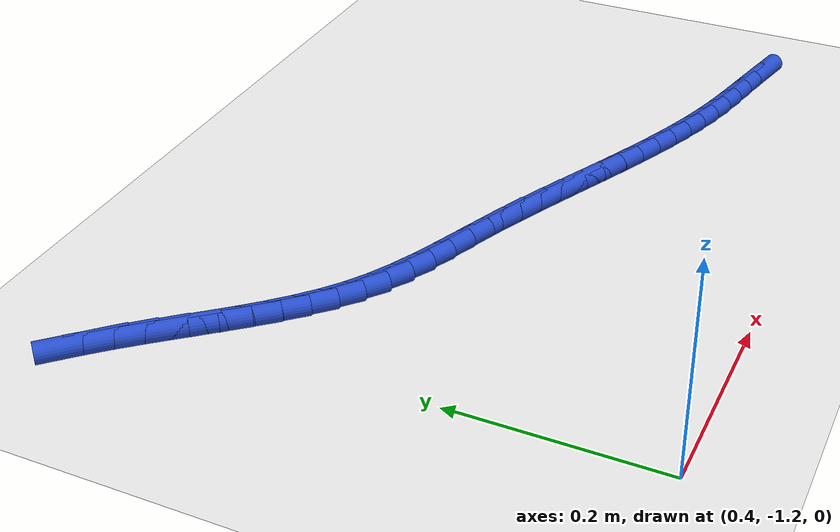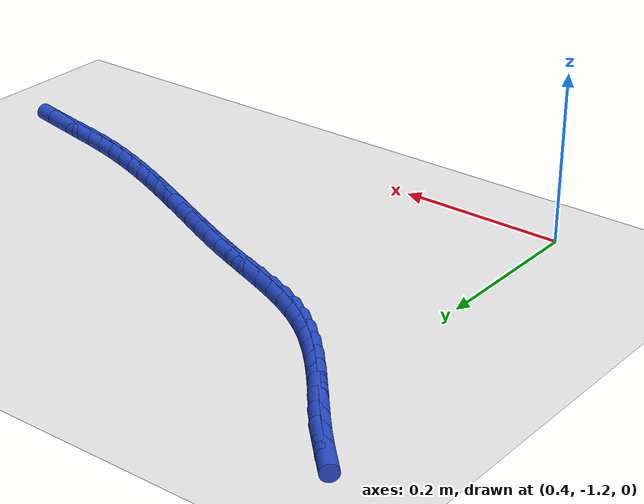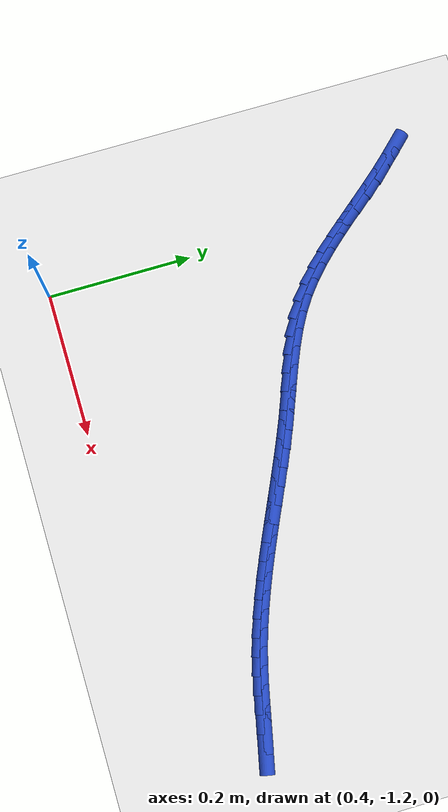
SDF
<sdf version="1.6">
 <world name="default">
  <model name="ground_plane">
   <static>1</static>
   <link name="link">
    <collision name="collision">
     <geometry><plane><normal>0 0 1</normal><size>100 100</size></plane></geometry>
     <surface><friction><ode><mu>100</mu><mu2>50</mu2></ode></friction></surface>
    </collision>
    <visual name="visual">
     <cast_shadows>0</cast_shadows>
     <geometry><plane><normal>0 0 1</normal><size>100 100</size></plane></geometry>
     <material>
      <script><uri>file://media/materials/scripts/gazebo.material</uri><name>Gazebo/WhiteGlow</name></script>
     </material>
    </visual>
   </link>
  </model>
  <model name="line">
   <link name="link_205">
    <pose>1.05690249130449 -1.0856761563710677 0.01 0 1.57 -0.21712295929126268</pose>
    <collision name="collision">
     <geometry><cylinder><radius>0.01</radius><length>0.08</length></cylinder></geometry>
    </collision>
    <visual name="visual">
     <material>
      <script><name>Gazebo/Blue</name><uri>file://media/materials/scripts/gazebo.material</uri></script>
     </material>
     <geometry><cylinder><radius>0.01</radius><length>0.08</length></cylinder></geometry>
    </visual>
   </link>
   <link name="link_206">
    <pose>1.0312082361942605 -1.0800079922213617 0.01 0 1.57 -0.21273833676994625</pose>
    <collision name="collision">
     <geometry><cylinder><radius>0.01</radius><length>0.08</length></cylinder></geometry>
    </collision>
    <visual name="visual">
     <material>
      <script><name>Gazebo/Blue</name><uri>file://media/materials/scripts/gazebo.material</uri></script>
     </material>
     <geometry><cylinder><radius>0.01</radius><length>0.08</length></cylinder></geometry>
    </visual>
   </link>
   <link name="link_207">
    <pose>1.0063256407469034 -1.0746331808611478 0.01 0 1.57 -0.22045401307047727</pose>
    <collision name="collision">
     <geometry><cylinder><radius>0.01</radius><length>0.08</length></cylinder></geometry>
    </collision>
    <visual name="visual">
     <material>
      <script><name>Gazebo/Blue</name><uri>file://media/materials/scripts/gazebo.material</uri></script>
     </material>
     <geometry><cylinder><radius>0.01</radius><length>0.08</length></cylinder></geometry>
    </visual>
   </link>
   <link name="link_208">
    <pose>0.982076095365031 -1.06919895022295 0.01 0 1.57 -0.24092612885756362</pose>
    <collision name="collision">
     <geometry><cylinder><radius>0.01</radius><length>0.08</length></cylinder></geometry>
    </collision>
    <visual name="visual">
     <material>
      <script><name>Gazebo/Blue</name><uri>file://media/materials/scripts/gazebo.material</uri></script>
     </material>
     <geometry><cylinder><radius>0.01</radius><length>0.08</length></cylinder></geometry>
    </visual>
   </link>
   <link name="link_209">
    <pose>0.9582809904512527 -1.0633525282392935 0.01 0 1.57 -0.2738408756062567</pose>
    <collision name="collision">
     <geometry><cylinder><radius>0.01</radius><length>0.08</length></cylinder></geometry>
    </collision>
    <visual name="visual">
     <material>
      <script><name>Gazebo/Blue</name><uri>file://media/materials/scripts/gazebo.material</uri></script>
     </material>
     <geometry><cylinder><radius>0.01</radius><length>0.08</length></cylinder></geometry>
    </visual>
   </link>
   <link name="link_210">
    <pose>0.9347634065448159 -1.056746494792906 0.01 0 1.57 -0.3113506947549193</pose>
    <collision name="collision">
     <geometry><cylinder><radius>0.01</radius><length>0.08</length></cylinder></geometry>
    </collision>
    <visual name="visual">
     <material>
      <script><name>Gazebo/Blue</name><uri>file://media/materials/scripts/gazebo.material</uri></script>
     </material>
     <geometry><cylinder><radius>0.01</radius><length>0.08</length></cylinder></geometry>
    </visual>
   </link>
   <link name="link_211">
    <pose>0.9114086690332983 -1.049230532960243 0.01 0 1.57 -0.344196979592678</pose>
    <collision name="collision">
     <geometry><cylinder><radius>0.01</radius><length>0.08</length></cylinder></geometry>
    </collision>
    <visual name="visual">
     <material>
      <script><name>Gazebo/Blue</name><uri>file://media/materials/scripts/gazebo.material</uri></script>
     </material>
     <geometry><cylinder><radius>0.01</radius><length>0.08</length></cylinder></geometry>
    </visual>
   </link>
   <link name="link_212">
    <pose>0.888181015401971 -1.0409042071636896 0.01 0 1.57 -0.37185021031246207</pose>
    <collision name="collision">
     <geometry><cylinder><radius>0.01</radius><length>0.08</length></cylinder></geometry>
    </collision>
    <visual name="visual">
     <material>
      <script><name>Gazebo/Blue</name><uri>file://media/materials/scripts/gazebo.material</uri></script>
     </material>
     <geometry><cylinder><radius>0.01</radius><length>0.08</length></cylinder></geometry>
    </visual>
   </link>
   <link name="link_213">
    <pose>0.8650497656557491 -1.0318831760226868 0.01 0 1.57 -0.3944010332750909</pose>
    <collision name="collision">
     <geometry><cylinder><radius>0.01</radius><length>0.08</length></cylinder></geometry>
    </collision>
    <visual name="visual">
     <material>
      <script><name>Gazebo/Blue</name><uri>file://media/materials/scripts/gazebo.material</uri></script>
     </material>
     <geometry><cylinder><radius>0.01</radius><length>0.08</length></cylinder></geometry>
    </visual>
   </link>
   <link name="link_214">
    <pose>0.8419842397995521 -1.022283098156676 0.01 0 1.57 -0.41195953306890654</pose>
    <collision name="collision">
     <geometry><cylinder><radius>0.01</radius><length>0.08</length></cylinder></geometry>
    </collision>
    <visual name="visual">
     <material>
      <script><name>Gazebo/Blue</name><uri>file://media/materials/scripts/gazebo.material</uri></script>
     </material>
     <geometry><cylinder><radius>0.01</radius><length>0.08</length></cylinder></geometry>
    </visual>
   </link>
   <link name="link_215">
    <pose>0.8189537578382963 -1.012219632185098 0.01 0 1.57 -0.4246381273253977</pose>
    <collision name="collision">
     <geometry><cylinder><radius>0.01</radius><length>0.08</length></cylinder></geometry>
    </collision>
    <visual name="visual">
     <material>
      <script><name>Gazebo/Blue</name><uri>file://media/materials/scripts/gazebo.material</uri></script>
     </material>
     <geometry><cylinder><radius>0.01</radius><length>0.08</length></cylinder></geometry>
    </visual>
   </link>
   <link name="link_216">
    <pose>0.7959276397768986 -1.001808436727394 0.01 0 1.57 -0.43253941751792385</pose>
    <collision name="collision">
     <geometry><cylinder><radius>0.01</radius><length>0.08</length></cylinder></geometry>
    </collision>
    <visual name="visual">
     <material>
      <script><name>Gazebo/Blue</name><uri>file://media/materials/scripts/gazebo.material</uri></script>
     </material>
     <geometry><cylinder><radius>0.01</radius><length>0.08</length></cylinder></geometry>
    </visual>
   </link>
   <link name="link_217">
    <pose>0.7728752056202779 -0.9911651704030056 0.01 0 1.57 -0.43574832352965026</pose>
    <collision name="collision">
     <geometry><cylinder><radius>0.01</radius><length>0.08</length></cylinder></geometry>
    </collision>
    <visual name="visual">
     <material>
      <script><name>Gazebo/Blue</name><uri>file://media/materials/scripts/gazebo.material</uri></script>
     </material>
     <geometry><cylinder><radius>0.01</radius><length>0.08</length></cylinder></geometry>
    </visual>
   </link>
   <link name="link_218">
    <pose>0.7497657753733502 -0.9804054918313733 0.01 0 1.57 -0.434327829600961</pose>
    <collision name="collision">
     <geometry><cylinder><radius>0.01</radius><length>0.08</length></cylinder></geometry>
    </collision>
    <visual name="visual">
     <material>
      <script><name>Gazebo/Blue</name><uri>file://media/materials/scripts/gazebo.material</uri></script>
     </material>
     <geometry><cylinder><radius>0.01</radius><length>0.08</length></cylinder></geometry>
    </visual>
   </link>
   <link name="link_219">
    <pose>0.7265686690410338 -0.9696450596319387 0.01 0 1.57 -0.4283178081827673</pose>
    <collision name="collision">
     <geometry><cylinder><radius>0.01</radius><length>0.08</length></cylinder></geometry>
    </collision>
    <visual name="visual">
     <material>
      <script><name>Gazebo/Blue</name><uri>file://media/materials/scripts/gazebo.material</uri></script>
     </material>
     <geometry><cylinder><radius>0.01</radius><length>0.08</length></cylinder></geometry>
    </visual>
   </link>
   <link name="link_220">
    <pose>0.7032532066282451 -0.9589995324241425 0.01 0 1.57 -0.41773658473296754</pose>
    <collision name="collision">
     <geometry><cylinder><radius>0.01</radius><length>0.08</length></cylinder></geometry>
    </collision>
    <visual name="visual">
     <material>
      <script><name>Gazebo/Blue</name><uri>file://media/materials/scripts/gazebo.material</uri></script>
     </material>
     <geometry><cylinder><radius>0.01</radius><length>0.08</length></cylinder></geometry>
    </visual>
   </link>
   <link name="link_221">
    <pose>0.6797887081399027 -0.9485845688274261 0.01 0 1.57 -0.4025851075011302</pose>
    <collision name="collision">
     <geometry><cylinder><radius>0.01</radius><length>0.08</length></cylinder></geometry>
    </collision>
    <visual name="visual">
     <material>
      <script><name>Gazebo/Blue</name><uri>file://media/materials/scripts/gazebo.material</uri></script>
     </material>
     <geometry><cylinder><radius>0.01</radius><length>0.08</length></cylinder></geometry>
    </visual>
   </link>
   <link name="link_222">
    <pose>0.6561444935809223 -0.9385158274612304 0.01 0 1.57 -0.383779026471745</pose>
    <collision name="collision">
     <geometry><cylinder><radius>0.01</radius><length>0.08</length></cylinder></geometry>
    </collision>
    <visual name="visual">
     <material>
      <script><name>Gazebo/Blue</name><uri>file://media/materials/scripts/gazebo.material</uri></script>
     </material>
     <geometry><cylinder><radius>0.01</radius><length>0.08</length></cylinder></geometry>
    </visual>
   </link>
   <link name="link_223">
    <pose>0.6323017828776538 -0.9288881107681018 0.01 0 1.57 -0.37341642400331093</pose>
    <collision name="collision">
     <geometry><cylinder><radius>0.01</radius><length>0.08</length></cylinder></geometry>
    </collision>
    <visual name="visual">
     <material>
      <script><name>Gazebo/Blue</name><uri>file://media/materials/scripts/gazebo.material</uri></script>
     </material>
     <geometry><cylinder><radius>0.01</radius><length>0.08</length></cylinder></geometry>
    </visual>
   </link>
   <link name="link_224">
    <pose>0.6083979138044971 -0.9195226041356764 0.01 0 1.57 -0.3800530041214617</pose>
    <collision name="collision">
     <geometry><cylinder><radius>0.01</radius><length>0.08</length></cylinder></geometry>
    </collision>
    <visual name="visual">
     <material>
      <script><name>Gazebo/Blue</name><uri>file://media/materials/scripts/gazebo.material</uri></script>
     </material>
     <geometry><cylinder><radius>0.01</radius><length>0.08</length></cylinder></geometry>
    </visual>
   </link>
   <link name="link_225">
    <pose>0.58468008661844 -0.9100479445062667 0.01 0 1.57 -0.4042043663872573</pose>
    <collision name="collision">
     <geometry><cylinder><radius>0.01</radius><length>0.08</length></cylinder></geometry>
    </collision>
    <visual name="visual">
     <material>
      <script><name>Gazebo/Blue</name><uri>file://media/materials/scripts/gazebo.material</uri></script>
     </material>
     <geometry><cylinder><radius>0.01</radius><length>0.08</length></cylinder></geometry>
    </visual>
   </link>
   <link name="link_226">
    <pose>0.5613977908696737 -0.9000887565348481 0.01 0 1.57 -0.44652681998860244</pose>
    <collision name="collision">
     <geometry><cylinder><radius>0.01</radius><length>0.08</length></cylinder></geometry>
    </collision>
    <visual name="visual">
     <material>
      <script><name>Gazebo/Blue</name><uri>file://media/materials/scripts/gazebo.material</uri></script>
     </material>
     <geometry><cylinder><radius>0.01</radius><length>0.08</length></cylinder></geometry>
    </visual>
   </link>
   <link name="link_227">
    <pose>0.5388005161083905 -0.8892696648763954 0.01 0 1.57 -0.5077861603887521</pose>
    <collision name="collision">
     <geometry><cylinder><radius>0.01</radius><length>0.08</length></cylinder></geometry>
    </collision>
    <visual name="visual">
     <material>
      <script><name>Gazebo/Blue</name><uri>file://media/materials/scripts/gazebo.material</uri></script>
     </material>
     <geometry><cylinder><radius>0.01</radius><length>0.08</length></cylinder></geometry>
    </visual>
   </link>
   <link name="link_228">
    <pose>0.5171377518847837 -0.8772152941858846 0.01 0 1.57 -0.5880938714448425</pose>
    <collision name="collision">
     <geometry><cylinder><radius>0.01</radius><length>0.08</length></cylinder></geometry>
    </collision>
    <visual name="visual">
     <material>
      <script><name>Gazebo/Blue</name><uri>file://media/materials/scripts/gazebo.material</uri></script>
     </material>
     <geometry><cylinder><radius>0.01</radius><length>0.08</length></cylinder></geometry>
    </visual>
   </link>
   <link name="link_229">
    <pose>0.4966542120567542 -0.8635569004289964 0.01 0 1.57 -0.6734074346524154</pose>
    <collision name="collision">
     <geometry><cylinder><radius>0.01</radius><length>0.08</length></cylinder></geometry>
    </collision>
    <visual name="visual">
     <material>
      <script><name>Gazebo/Blue</name><uri>file://media/materials/scripts/gazebo.material</uri></script>
     </material>
     <geometry><cylinder><radius>0.01</radius><length>0.08</length></cylinder></geometry>
    </visual>
   </link>
   <link name="link_230">
    <pose>0.4774001705658258 -0.8481957300608793 0.01 0 1.57 -0.744683285462189</pose>
    <collision name="collision">
     <geometry><cylinder><radius>0.01</radius><length>0.08</length></cylinder></geometry>
    </collision>
    <visual name="visual">
     <material>
      <script><name>Gazebo/Blue</name><uri>file://media/materials/scripts/gazebo.material</uri></script>
     </material>
     <geometry><cylinder><radius>0.01</radius><length>0.08</length></cylinder></geometry>
    </visual>
   </link>
   <link name="link_231">
    <pose>0.45916811396023743 -0.8313909814726188 0.01 0 1.57 -0.8003439656162981</pose>
    <collision name="collision">
     <geometry><cylinder><radius>0.01</radius><length>0.08</length></cylinder></geometry>
    </collision>
    <visual name="visual">
     <material>
      <script><name>Gazebo/Blue</name><uri>file://media/materials/scripts/gazebo.material</uri></script>
     </material>
     <geometry><cylinder><radius>0.01</radius><length>0.08</length></cylinder></geometry>
    </visual>
   </link>
   <link name="link_232">
    <pose>0.44173276689485963 -0.8134265164185354 0.01 0 1.57 -0.8406967027699134</pose>
    <collision name="collision">
     <geometry><cylinder><radius>0.01</radius><length>0.08</length></cylinder></geometry>
    </collision>
    <visual name="visual">
     <material>
      <script><name>Gazebo/Blue</name><uri>file://media/materials/scripts/gazebo.material</uri></script>
     </material>
     <geometry><cylinder><radius>0.01</radius><length>0.08</length></cylinder></geometry>
    </visual>
   </link>
   <link name="link_233">
    <pose>0.4248688540245602 -0.7945861966529472 0.01 0 1.57 -0.8662936522957673</pose>
    <collision name="collision">
     <geometry><cylinder><radius>0.01</radius><length>0.08</length></cylinder></geometry>
    </collision>
    <visual name="visual">
     <material>
      <script><name>Gazebo/Blue</name><uri>file://media/materials/scripts/gazebo.material</uri></script>
     </material>
     <geometry><cylinder><radius>0.01</radius><length>0.08</length></cylinder></geometry>
    </visual>
   </link>
   <link name="link_234">
    <pose>0.40835110000421004 -0.7751538839301761 0.01 0 1.57 -0.8776596124371354</pose>
    <collision name="collision">
     <geometry><cylinder><radius>0.01</radius><length>0.08</length></cylinder></geometry>
    </collision>
    <visual name="visual">
     <material>
      <script><name>Gazebo/Blue</name><uri>file://media/materials/scripts/gazebo.material</uri></script>
     </material>
     <geometry><cylinder><radius>0.01</radius><length>0.08</length></cylinder></geometry>
    </visual>
   </link>
   <link name="link_235">
    <pose>0.39195422948867775 -0.7554134400045411 0.01 0 1.57 -0.8751430224466761</pose>
    <collision name="collision">
     <geometry><cylinder><radius>0.01</radius><length>0.08</length></cylinder></geometry>
    </collision>
    <visual name="visual">
     <material>
      <script><name>Gazebo/Blue</name><uri>file://media/materials/scripts/gazebo.material</uri></script>
     </material>
     <geometry><cylinder><radius>0.01</radius><length>0.08</length></cylinder></geometry>
    </visual>
   </link>
   <link name="link_236">
    <pose>0.3754529671328322 -0.7356487266303615 0.01 0 1.57 -0.8588618162089019</pose>
    <collision name="collision">
     <geometry><cylinder><radius>0.01</radius><length>0.08</length></cylinder></geometry>
    </collision>
    <visual name="visual">
     <material>
      <script><name>Gazebo/Blue</name><uri>file://media/materials/scripts/gazebo.material</uri></script>
     </material>
     <geometry><cylinder><radius>0.01</radius><length>0.08</length></cylinder></geometry>
    </visual>
   </link>
   <link name="link_237">
    <pose>0.3586220375915438 -0.7161436055619586 0.01 0 1.57 -0.8301867870321998</pose>
    <collision name="collision">
     <geometry><cylinder><radius>0.01</radius><length>0.08</length></cylinder></geometry>
    </collision>
    <visual name="visual">
     <material>
      <script><name>Gazebo/Blue</name><uri>file://media/materials/scripts/gazebo.material</uri></script>
     </material>
     <geometry><cylinder><radius>0.01</radius><length>0.08</length></cylinder></geometry>
    </visual>
   </link>
   <link name="link_238">
    <pose>0.34126147420065317 -0.6971538729146076 0.01 0 1.57 -0.801423849959081</pose>
    <collision name="collision">
     <geometry><cylinder><radius>0.01</radius><length>0.08</length></cylinder></geometry>
    </collision>
    <visual name="visual">
     <material>
      <script><name>Gazebo/Blue</name><uri>file://media/materials/scripts/gazebo.material</uri></script>
     </material>
     <geometry><cylinder><radius>0.01</radius><length>0.08</length></cylinder></geometry>
    </visual>
   </link>
  </model>
 </world>
</sdf>
